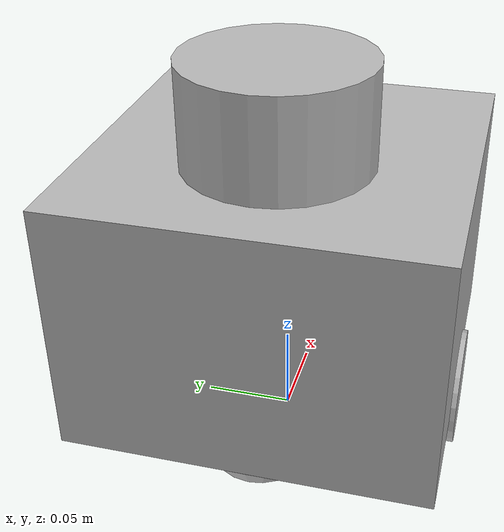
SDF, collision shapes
<?xml version="1.0" ?>
<sdf version="1.5">
  <model name="PIFBOT">
    <pose>0.0 0.0 0.0 0.0 0.0 0.0</pose>

    <link name="base_footprint"/>

    <link name="base_link">

      <inertial>
        <pose>0 0 0.1025 0 0 0</pose>
        <inertia>
          <ixx>0.001</ixx>
          <ixy>0.000</ixy>
          <ixz>0.000</ixz>
          <iyy>0.001</iyy>
          <iyz>0.000</iyz>
          <izz>0.001</izz>
        </inertia>
        <mass>1.0</mass>
      </inertial>

      <collision name="base_collision">
        <pose>0 0 0.1025 0 0 0</pose>
        <geometry>
          <box>
            <size>0.2 0.2 0.140</size>
          </box>
        </geometry>
      </collision>

      <visual name="base_visual">
        <pose>0 0 0.0625 0 0 -1.5707</pose>
        <geometry>
          <mesh>
            <uri>model://robot_PIFBOT/meshes/dae/robot_base.dae</uri>
          </mesh>
        </geometry>
      </visual>
    </link>

    <link name="imu_link">
      <sensor name="robot_imu" type="imu">
        <always_on>true</always_on>
        <update_rate>200</update_rate>
        <imu>
          <angular_velocity>
            <x>
              <noise type="gaussian">
                <mean>0.0</mean>
                <stddev>2e-4</stddev>
              </noise>
            </x>
            <y>
              <noise type="gaussian">
                <mean>0.0</mean>
                <stddev>2e-4</stddev>
              </noise>
            </y>
            <z>
              <noise type="gaussian">
                <mean>0.0</mean>
                <stddev>2e-4</stddev>
              </noise>
            </z>
          </angular_velocity>
          <linear_acceleration>
            <x>
              <noise type="gaussian">
                <mean>0.0</mean>
                <stddev>1.7e-2</stddev>
              </noise>
            </x>
            <y>
              <noise type="gaussian">
                <mean>0.0</mean>
                <stddev>1.7e-2</stddev>
              </noise>
            </y>
            <z>
              <noise type="gaussian">
                <mean>0.0</mean>
                <stddev>1.7e-2</stddev>
              </noise>
            </z>
          </linear_acceleration>
        </imu>
        <plugin name="robot_imu" filename="libgazebo_ros_imu_sensor.so">
          <ros>
            <remapping>~/out:=imu</remapping>
          </ros>
        </plugin>
      </sensor>
    </link>

    <link name="base_scan">
      <inertial>
        <pose>-0.020 0 0.5 0 0 0</pose>
        <inertia>
          <ixx>0.001</ixx>
          <ixy>0.000</ixy>
          <ixz>0.000</ixz>
          <iyy>0.001</iyy>
          <iyz>0.000</iyz>
          <izz>0.001</izz>
        </inertia>
        <mass>0.114</mass>
      </inertial>

      <collision name="lidar_sensor_collision">
        <pose>-0.020 0 0.2 0 0 0</pose>
        <geometry>
          <cylinder>
            <radius>0.0508</radius>
            <length>0.055</length>
          </cylinder>
        </geometry>
      </collision>

      <sensor name="hls_lfcd_lds" type="ray">
        <always_on>true</always_on>
        <visualize>true</visualize>
        <pose>-0.032 0 0.23 0 0 0</pose>
        <update_rate>5</update_rate>
        <ray>
          <scan>
            <horizontal>
              <samples>360</samples>
              <resolution>1.000000</resolution>
              <min_angle>0.000000</min_angle>
              <max_angle>6.280000</max_angle>
            </horizontal>
          </scan>
          <range>
            <min>0.120000</min>
            <max>3.5</max>
            <resolution>0.015000</resolution>
          </range>
          <noise>
            <type>gaussian</type>
            <mean>0.0</mean>
            <stddev>0.01</stddev>
          </noise>
        </ray>
        <plugin name="robot_laserscan" filename="libgazebo_ros_ray_sensor.so">
          <ros>
            <remapping>~/out:=scan</remapping>
          </ros>
          <output_type>sensor_msgs/LaserScan</output_type>
          <frame_name>base_scan</frame_name>
        </plugin>
      </sensor>
    </link>

    <link name="wheel_left_link">

      <inertial>
        <pose>0 0.09 0.0325 -1.57 0 0</pose>
        <inertia>
          <ixx>0.001</ixx>
          <ixy>0.000</ixy>
          <ixz>0.000</ixz>
          <iyy>0.001</iyy>
          <iyz>0.000</iyz>
          <izz>0.001</izz>
        </inertia>
        <mass>0.1</mass>
      </inertial>

      <collision name="wheel_left_collision">
        <pose>0 0.09 0.0325 -1.57 0 0</pose>
        <geometry>
          <cylinder>
            <radius>0.0325</radius>
            <length>0.026</length>
          </cylinder>
        </geometry>
        <surface>
          <!-- This friction pamareter don't contain reliable data!! -->
          <friction>
            <ode>
              <mu>100000.0</mu>
              <mu2>100000.0</mu2>
              <fdir1>0 0 0</fdir1>
              <slip1>0.0</slip1>
              <slip2>0.0</slip2>
            </ode>
          </friction>
          <contact>
            <ode>
              <soft_cfm>0</soft_cfm>
              <soft_erp>0.2</soft_erp>
              <kp>1e+5</kp>
              <kd>1</kd>
              <max_vel>0.01</max_vel>
              <min_depth>0.001</min_depth>
            </ode>
          </contact>
        </surface>
      </collision>

      <visual name="wheel_left_visual">
        <pose>0 0.095 0.0325 0 0 -1.57</pose>
        <geometry>
          <mesh>
            <uri>model://robot_PIFBOT/meshes/dae/robot_wheel.dae</uri>
          </mesh>
        </geometry>
      </visual>
    </link>

    <link name="wheel_right_link">

      <inertial>
        <pose>0 -0.09 0.0325 -1.57 0 0</pose>
        <inertia>
            <ixx>0.001</ixx>
            <ixy>0.000</ixy>
            <ixz>0.000</ixz>
            <iyy>0.001</iyy>
            <iyz>0.000</iyz>
            <izz>0.001</izz>
        </inertia>
        <mass>0.1</mass>
      </inertial>

      <collision name="wheel_right_collision">
        <pose>0 -0.09 0.0325 -1.57 0 0</pose>
        <geometry>
          <cylinder>
            <radius>0.0325</radius>
            <length>0.026</length>
          </cylinder>
        </geometry>
        <surface>
          <!-- This friction pamareter don't contain reliable data!! -->
          <friction>
            <ode>
              <mu>100000.0</mu>
              <mu2>100000.0</mu2>
              <fdir1>0 0 0</fdir1>
              <slip1>0.0</slip1>
              <slip2>0.0</slip2>
            </ode>
          </friction>
          <contact>
            <ode>
              <soft_cfm>0</soft_cfm>
              <soft_erp>0.2</soft_erp>
              <kp>1e+5</kp>
              <kd>1</kd>
              <max_vel>0.01</max_vel>
              <min_depth>0.001</min_depth>
            </ode>
          </contact>
        </surface>
      </collision>

      <visual name="wheel_right_visual">
        <pose>0 -0.095 0.0325 0 0 1.57</pose>
        <geometry>
          <mesh>
            <uri>model://robot_PIFBOT/meshes/dae/robot_wheel.dae</uri>
          </mesh>
        </geometry>
      </visual>
    </link>

    <link name='caster_back_link'>
      <pose>0.06 0 0.0325 0 0 0</pose>
      <inertial>
        <mass>0.005</mass>
        <inertia>
          <ixx>0.001</ixx>
          <ixy>0.000</ixy>
          <ixz>0.000</ixz>
          <iyy>0.001</iyy>
          <iyz>0.000</iyz>
          <izz>0.001</izz>
        </inertia>
      </inertial>
      <collision name='collision'>
        <geometry>
          <sphere>
            <radius>0.0325</radius>
          </sphere>
        </geometry>
        <surface>
          <contact>
            <ode>
              <soft_cfm>0</soft_cfm>
              <soft_erp>0.2</soft_erp>
              <kp>1e+5</kp>
              <kd>1</kd>
              <max_vel>0.01</max_vel>
              <min_depth>0.001</min_depth>
            </ode>
          </contact>
        </surface>
      </collision>
    </link>

    <link name='caster_front_link'>
      <pose>-0.06 0 0.0325 0 0 0</pose>
      <inertial>
        <mass>0.005</mass>
        <inertia>
          <ixx>0.001</ixx>
          <ixy>0.000</ixy>
          <ixz>0.000</ixz>
          <iyy>0.001</iyy>
          <iyz>0.000</iyz>
          <izz>0.001</izz>
        </inertia>
      </inertial>
      <collision name='collision'>
        <geometry>
          <sphere>
            <radius>0.0325</radius>
          </sphere>
        </geometry>
        <surface>
          <contact>
            <ode>
              <soft_cfm>0</soft_cfm>
              <soft_erp>0.2</soft_erp>
              <kp>1e+5</kp>
              <kd>1</kd>
              <max_vel>0.01</max_vel>
              <min_depth>0.001</min_depth>
            </ode>
          </contact>
        </surface>
      </collision>
    </link>

    <joint name="base_joint" type="fixed">
      <parent>base_footprint</parent>
      <child>base_link</child>
      <pose>0.0 0.0 0.010 0 0 0</pose>
    </joint>

    <joint name="wheel_left_joint" type="revolute">
      <parent>base_link</parent>
      <child>wheel_left_link</child>
      <pose>0 0.09 0.0325 -1.57 0 0</pose>
      <axis>
        <xyz>0 0 1</xyz>
      </axis>
    </joint>

    <joint name="wheel_right_joint" type="revolute">
      <parent>base_link</parent>
      <child>wheel_right_link</child>
      <pose>0 -0.09 0.0325 -1.57 0 0</pose>
      <axis>
        <xyz>0 0 1</xyz>
      </axis>
    </joint>

    <joint name='caster_back_joint' type='ball'>
      <parent>base_link</parent>
      <child>caster_back_link</child>
    </joint>

    <joint name='caster_front_joint' type='ball'>
      <parent>base_link</parent>
      <child>caster_front_link</child>
    </joint>

    <joint name="imu_joint" type="fixed">
      <parent>base_link</parent>
      <child>imu_link</child>
      <pose>-0.032 0 0.068 0 0 0</pose>
      <axis>
        <xyz>0 0 1</xyz>
      </axis>
    </joint>

    <joint name="lidar_joint" type="fixed">
      <parent>base_link</parent>
      <child>base_scan</child>
      <pose>-0.032 0 0.171 0 0 0</pose>
      <axis>
        <xyz>0 0 1</xyz>
      </axis>
    </joint>

    <plugin name="robot_diff_drive" filename="libgazebo_ros_diff_drive.so">

      <ros>
      </ros>

      <update_rate>30</update_rate>

      <!-- wheels -->
      <left_joint>wheel_left_joint</left_joint>
      <right_joint>wheel_right_joint</right_joint>

      <!-- kinematics -->
      <wheel_separation>0.160</wheel_separation>
      <wheel_diameter>0.066</wheel_diameter>

      <!-- limits -->
      <max_wheel_torque>20</max_wheel_torque>
      <max_wheel_acceleration>1.0</max_wheel_acceleration>

      <command_topic>cmd_vel</command_topic>

      <!-- output -->
      <publish_odom>true</publish_odom>
      <publish_odom_tf>true</publish_odom_tf>
      <publish_wheel_tf>false</publish_wheel_tf>

      <odometry_topic>odom</odometry_topic>
      <odometry_frame>odom</odometry_frame>
      <robot_base_frame>base_footprint</robot_base_frame>

    </plugin>

    <plugin name="robot_joint_state" filename="libgazebo_ros_joint_state_publisher.so">
      <ros>
        <remapping>~/out:=joint_states</remapping>
      </ros>
      <update_rate>30</update_rate>
      <joint_name>wheel_left_joint</joint_name>
      <joint_name>wheel_right_joint</joint_name>
    </plugin>
  </model>
</sdf>
